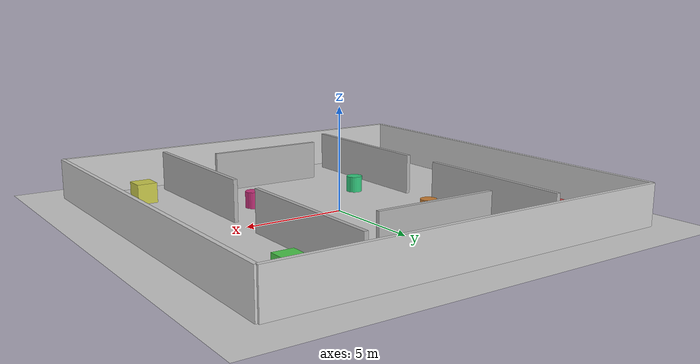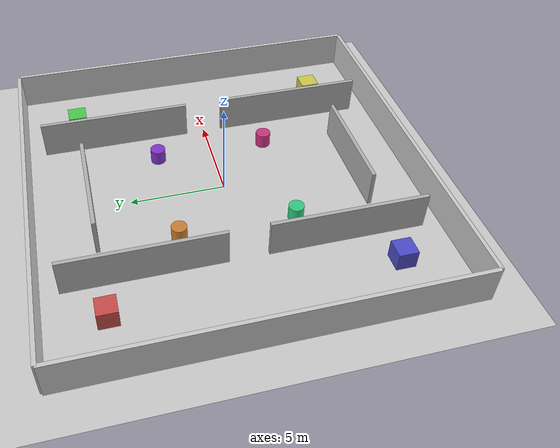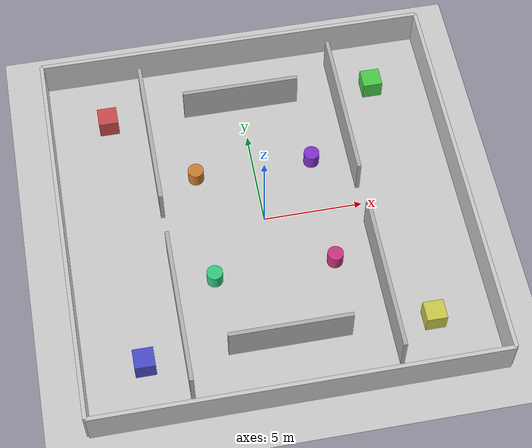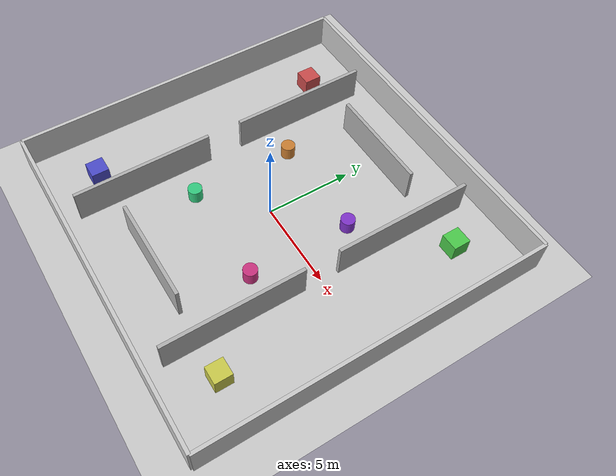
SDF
<?xml version="1.0"?>
<sdf version="1.6">
  <world name="slam_world">

    <include>
      <uri>model://ground_plane</uri>
    </include>

    <include>
      <uri>model://sun</uri>
    </include>

    <physics type="ode">
      <max_step_size>0.001</max_step_size>
      <real_time_factor>1</real_time_factor>
      <real_time_update_rate>1000</real_time_update_rate>
    </physics>

    <scene>
      <ambient>0.8 0.8 0.8 1</ambient>
      <background>0.7 0.7 0.8 1</background>
      <shadows>true</shadows>
      <grid>true</grid>
    </scene>

    <gui fullscreen='0'>
      <camera name='user_camera'>
        <pose>12 -12 18 0 0.8 2.356</pose>
        <view_controller>orbit</view_controller>
      </camera>
    </gui>

    <!-- Outer walls (20x20 area) -->
    <model name="outer_wall_north">
      <static>true</static>
      <pose>0 10 1 0 0 0</pose>
      <link name="link">
        <collision name="collision">
          <geometry>
            <box>
              <size>20 0.2 2</size>
            </box>
          </geometry>
        </collision>
        <visual name="visual">
          <geometry>
            <box>
              <size>20 0.2 2</size>
            </box>
          </geometry>
          <material>
            <ambient>0.8 0.8 0.8 1</ambient>
            <diffuse>0.8 0.8 0.8 1</diffuse>
          </material>
        </visual>
      </link>
    </model>

    <model name="outer_wall_south">
      <static>true</static>
      <pose>0 -10 1 0 0 0</pose>
      <link name="link">
        <collision name="collision">
          <geometry>
            <box>
              <size>20 0.2 2</size>
            </box>
          </geometry>
        </collision>
        <visual name="visual">
          <geometry>
            <box>
              <size>20 0.2 2</size>
            </box>
          </geometry>
          <material>
            <ambient>0.8 0.8 0.8 1</ambient>
            <diffuse>0.8 0.8 0.8 1</diffuse>
          </material>
        </visual>
      </link>
    </model>

    <model name="outer_wall_east">
      <static>true</static>
      <pose>10 0 1 0 0 0</pose>
      <link name="link">
        <collision name="collision">
          <geometry>
            <box>
              <size>0.2 20 2</size>
            </box>
          </geometry>
        </collision>
        <visual name="visual">
          <geometry>
            <box>
              <size>0.2 20 2</size>
            </box>
          </geometry>
          <material>
            <ambient>0.8 0.8 0.8 1</ambient>
            <diffuse>0.8 0.8 0.8 1</diffuse>
          </material>
        </visual>
      </link>
    </model>

    <model name="outer_wall_west">
      <static>true</static>
      <pose>-10 0 1 0 0 0</pose>
      <link name="link">
        <collision name="collision">
          <geometry>
            <box>
              <size>0.2 20 2</size>
            </box>
          </geometry>
        </collision>
        <visual name="visual">
          <geometry>
            <box>
              <size>0.2 20 2</size>
            </box>
          </geometry>
          <material>
            <ambient>0.8 0.8 0.8 1</ambient>
            <diffuse>0.8 0.8 0.8 1</diffuse>
          </material>
        </visual>
      </link>
    </model>

    <!-- Inner walls - creating rooms around center -->
    <model name="inner_wall_1">
      <static>true</static>
      <pose>-5 5 1 0 0 0</pose>
      <link name="link">
        <collision name="collision">
          <geometry>
            <box>
              <size>0.2 8 2</size>
            </box>
          </geometry>
        </collision>
        <visual name="visual">
          <geometry>
            <box>
              <size>0.2 8 2</size>
            </box>
          </geometry>
          <material>
            <ambient>0.7 0.7 0.7 1</ambient>
            <diffuse>0.7 0.7 0.7 1</diffuse>
          </material>
        </visual>
      </link>
    </model>

    <model name="inner_wall_2">
      <static>true</static>
      <pose>5 5 1 0 0 0</pose>
      <link name="link">
        <collision name="collision">
          <geometry>
            <box>
              <size>0.2 8 2</size>
            </box>
          </geometry>
        </collision>
        <visual name="visual">
          <geometry>
            <box>
              <size>0.2 8 2</size>
            </box>
          </geometry>
          <material>
            <ambient>0.7 0.7 0.7 1</ambient>
            <diffuse>0.7 0.7 0.7 1</diffuse>
          </material>
        </visual>
      </link>
    </model>

    <model name="inner_wall_3">
      <static>true</static>
      <pose>-5 -5 1 0 0 0</pose>
      <link name="link">
        <collision name="collision">
          <geometry>
            <box>
              <size>0.2 8 2</size>
            </box>
          </geometry>
        </collision>
        <visual name="visual">
          <geometry>
            <box>
              <size>0.2 8 2</size>
            </box>
          </geometry>
          <material>
            <ambient>0.7 0.7 0.7 1</ambient>
            <diffuse>0.7 0.7 0.7 1</diffuse>
          </material>
        </visual>
      </link>
    </model>

    <model name="inner_wall_4">
      <static>true</static>
      <pose>5 -5 1 0 0 0</pose>
      <link name="link">
        <collision name="collision">
          <geometry>
            <box>
              <size>0.2 8 2</size>
            </box>
          </geometry>
        </collision>
        <visual name="visual">
          <geometry>
            <box>
              <size>0.2 8 2</size>
            </box>
          </geometry>
          <material>
            <ambient>0.7 0.7 0.7 1</ambient>
            <diffuse>0.7 0.7 0.7 1</diffuse>
          </material>
        </visual>
      </link>
    </model>

    <model name="inner_wall_5">
      <static>true</static>
      <pose>0 7 1 0 0 1.5708</pose>
      <link name="link">
        <collision name="collision">
          <geometry>
            <box>
              <size>0.2 6 2</size>
            </box>
          </geometry>
        </collision>
        <visual name="visual">
          <geometry>
            <box>
              <size>0.2 6 2</size>
            </box>
          </geometry>
          <material>
            <ambient>0.7 0.7 0.7 1</ambient>
            <diffuse>0.7 0.7 0.7 1</diffuse>
          </material>
        </visual>
      </link>
    </model>

    <model name="inner_wall_6">
      <static>true</static>
      <pose>0 -7 1 0 0 1.5708</pose>
      <link name="link">
        <collision name="collision">
          <geometry>
            <box>
              <size>0.2 6 2</size>
            </box>
          </geometry>
        </collision>
        <visual name="visual">
          <geometry>
            <box>
              <size>0.2 6 2</size>
            </box>
          </geometry>
          <material>
            <ambient>0.7 0.7 0.7 1</ambient>
            <diffuse>0.7 0.7 0.7 1</diffuse>
          </material>
        </visual>
      </link>
    </model>

    <!-- Obstacles -->
    <model name="obstacle_box_1">
      <static>true</static>
      <pose>-7 7 0.5 0 0 0</pose>
      <link name="link">
        <collision name="collision">
          <geometry>
            <box>
              <size>1 1 1</size>
            </box>
          </geometry>
        </collision>
        <visual name="visual">
          <geometry>
            <box>
              <size>1 1 1</size>
            </box>
          </geometry>
          <material>
            <ambient>0.8 0.3 0.3 1</ambient>
            <diffuse>0.8 0.3 0.3 1</diffuse>
          </material>
        </visual>
      </link>
    </model>

    <model name="obstacle_box_2">
      <static>true</static>
      <pose>7 7 0.5 0 0 0</pose>
      <link name="link">
        <collision name="collision">
          <geometry>
            <box>
              <size>1 1 1</size>
            </box>
          </geometry>
        </collision>
        <visual name="visual">
          <geometry>
            <box>
              <size>1 1 1</size>
            </box>
          </geometry>
          <material>
            <ambient>0.3 0.8 0.3 1</ambient>
            <diffuse>0.3 0.8 0.3 1</diffuse>
          </material>
        </visual>
      </link>
    </model>

    <model name="obstacle_box_3">
      <static>true</static>
      <pose>-7 -7 0.5 0 0 0</pose>
      <link name="link">
        <collision name="collision">
          <geometry>
            <box>
              <size>1 1 1</size>
            </box>
          </geometry>
        </collision>
        <visual name="visual">
          <geometry>
            <box>
              <size>1 1 1</size>
            </box>
          </geometry>
          <material>
            <ambient>0.3 0.3 0.8 1</ambient>
            <diffuse>0.3 0.3 0.8 1</diffuse>
          </material>
        </visual>
      </link>
    </model>

    <model name="obstacle_box_4">
      <static>true</static>
      <pose>7 -7 0.5 0 0 0</pose>
      <link name="link">
        <collision name="collision">
          <geometry>
            <box>
              <size>1 1 1</size>
            </box>
          </geometry>
        </collision>
        <visual name="visual">
          <geometry>
            <box>
              <size>1 1 1</size>
            </box>
          </geometry>
          <material>
            <ambient>0.8 0.8 0.3 1</ambient>
            <diffuse>0.8 0.8 0.3 1</diffuse>
          </material>
        </visual>
      </link>
    </model>

    <model name="obstacle_cylinder_1">
      <static>true</static>
      <pose>-3 3 0.4 0 0 0</pose>
      <link name="link">
        <collision name="collision">
          <geometry>
            <cylinder>
              <radius>0.4</radius>
              <length>0.8</length>
            </cylinder>
          </geometry>
        </collision>
        <visual name="visual">
          <geometry>
            <cylinder>
              <radius>0.4</radius>
              <length>0.8</length>
            </cylinder>
          </geometry>
          <material>
            <ambient>0.8 0.5 0.2 1</ambient>
            <diffuse>0.8 0.5 0.2 1</diffuse>
          </material>
        </visual>
      </link>
    </model>

    <model name="obstacle_cylinder_2">
      <static>true</static>
      <pose>3 3 0.4 0 0 0</pose>
      <link name="link">
        <collision name="collision">
          <geometry>
            <cylinder>
              <radius>0.4</radius>
              <length>0.8</length>
            </cylinder>
          </geometry>
        </collision>
        <visual name="visual">
          <geometry>
            <cylinder>
              <radius>0.4</radius>
              <length>0.8</length>
            </cylinder>
          </geometry>
          <material>
            <ambient>0.5 0.2 0.8 1</ambient>
            <diffuse>0.5 0.2 0.8 1</diffuse>
          </material>
        </visual>
      </link>
    </model>

    <model name="obstacle_cylinder_3">
      <static>true</static>
      <pose>-3 -3 0.4 0 0 0</pose>
      <link name="link">
        <collision name="collision">
          <geometry>
            <cylinder>
              <radius>0.4</radius>
              <length>0.8</length>
            </cylinder>
          </geometry>
        </collision>
        <visual name="visual">
          <geometry>
            <cylinder>
              <radius>0.4</radius>
              <length>0.8</length>
            </cylinder>
          </geometry>
          <material>
            <ambient>0.2 0.8 0.5 1</ambient>
            <diffuse>0.2 0.8 0.5 1</diffuse>
          </material>
        </visual>
      </link>
    </model>

    <model name="obstacle_cylinder_4">
      <static>true</static>
      <pose>3 -3 0.4 0 0 0</pose>
      <link name="link">
        <collision name="collision">
          <geometry>
            <cylinder>
              <radius>0.4</radius>
              <length>0.8</length>
            </cylinder>
          </geometry>
        </collision>
        <visual name="visual">
          <geometry>
            <cylinder>
              <radius>0.4</radius>
              <length>0.8</length>
            </cylinder>
          </geometry>
          <material>
            <ambient>0.8 0.2 0.5 1</ambient>
            <diffuse>0.8 0.2 0.5 1</diffuse>
          </material>
        </visual>
      </link>
    </model>

  </world>
</sdf>
